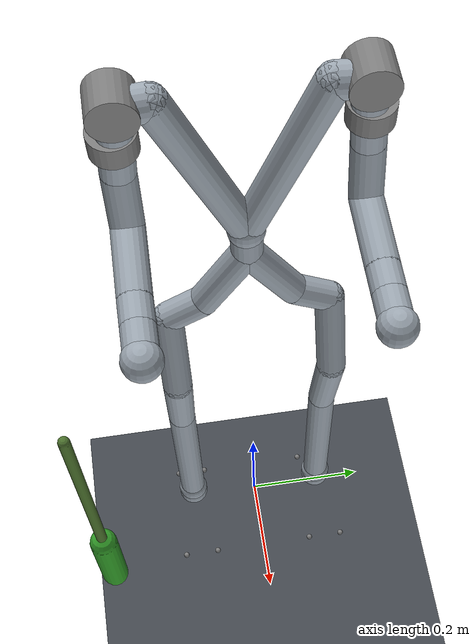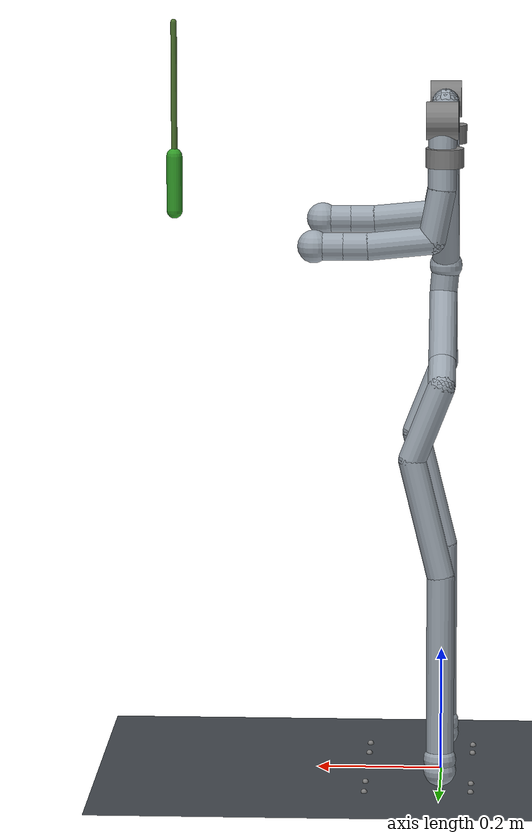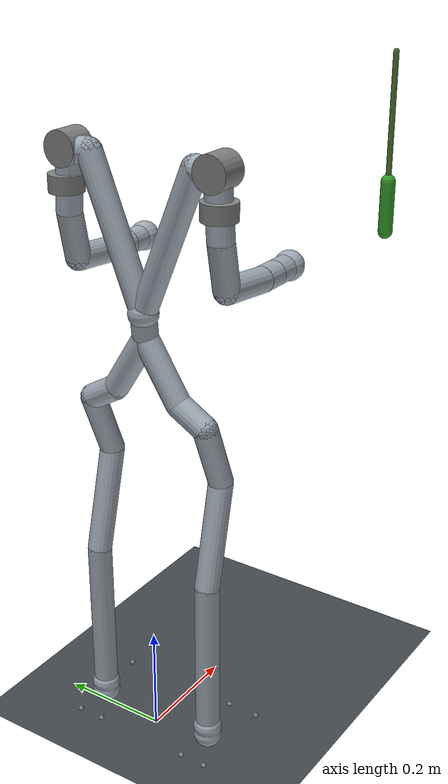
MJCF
<mujoco model="g1_okra_sim">
  <compiler angle="radian" meshdir="meshes/" />
  <worldbody>
    <body name="pelvis" pos="0 0 0.786864" gravcomp="1">
      <inertial pos="0 0 -0.0760301" quat="1 0 -0.000398273 0" mass="3.814" diaginertia="0.0105549 0.00931478 0.0079185" />
      <body name="left_hip_pitch_link" pos="0 0.064452 -0.1027" gravcomp="1">
        <inertial pos="0.002741 0.047791 -0.02606" quat="0.954862 0.293964 0.0302556 0.030122" mass="1.35" diaginertia="0.00181517 0.00153422 0.00116212" />
        <joint name="left_hip_pitch_joint" pos="0 0 0" axis="0 1 0" range="-2.5307 2.8798" actuatorfrcrange="-88 88" />
        <body name="left_hip_roll_link" pos="0 0.052 -0.030465" quat="0.996179 0 -0.0873386 0" gravcomp="1">
          <inertial pos="0.029812 -0.001045 -0.087934" quat="0.977808 -1.97119e-05 0.205576 -0.0403793" mass="1.52" diaginertia="0.00254986 0.00241169 0.00148755" />
          <joint name="left_hip_roll_joint" pos="0 0 0" axis="1 0 0" range="-0.5236 2.9671" actuatorfrcrange="-139 139" />
          <body name="left_hip_yaw_link" pos="0.025001 0 -0.12412" gravcomp="1">
            <inertial pos="-0.057709 -0.010981 -0.15078" quat="0.600598 0.15832 0.223482 0.751181" mass="1.702" diaginertia="0.00776166 0.00717575 0.00160139" />
            <joint name="left_hip_yaw_joint" pos="0 0 0" axis="0 0 1" range="-2.7576 2.7576" actuatorfrcrange="-88 88" />
            <body name="left_knee_link" pos="-0.078273 0.0021489 -0.17734" quat="0.996179 0 0.0873386 0" gravcomp="1">
              <inertial pos="0.005457 0.003964 -0.12074" quat="0.923418 -0.0327699 0.0158246 0.382067" mass="1.932" diaginertia="0.0113804 0.0112778 0.00146458" />
              <joint name="left_knee_joint" pos="0 0 0" axis="0 1 0" range="-0.087267 2.8798" actuatorfrcrange="-139 139" />
              <body name="left_ankle_pitch_link" pos="0 -9.4445e-05 -0.30001" gravcomp="1">
                <inertial pos="-0.007269 0 0.011137" quat="0.603053 0.369225 0.369225 0.603053" mass="0.074" diaginertia="1.89e-05 1.40805e-05 6.9195e-06" />
                <joint name="left_ankle_pitch_joint" pos="0 0 0" axis="0 1 0" range="-0.87267 0.5236" actuatorfrcrange="-35 35" />
                <body name="left_ankle_roll_link" pos="0 0 -0.017558" gravcomp="1">
                  <inertial pos="0.026505 0 -0.016425" quat="-0.000481092 0.728482 -0.000618967 0.685065" mass="0.608" diaginertia="0.00167218 0.0016161 0.000217621" />
                  <joint name="left_ankle_roll_joint" pos="0 0 0" axis="1 0 0" range="-0.2618 0.2618" actuatorfrcrange="-35 35" />
                  <geom size="0.005" pos="-0.05 0.025 -0.03" />
                  <geom size="0.005" pos="-0.05 -0.025 -0.03" />
                  <geom size="0.005" pos="0.12 0.03 -0.03" />
                  <geom size="0.005" pos="0.12 -0.03 -0.03" />
                  <geom name="tip_left_ankle_roll_link" type="sphere" size="0.026" rgba="0.62 0.66 0.70 1" contype="0" conaffinity="0" group="1" mass="0" />
                </body>
                <geom name="tip_left_ankle_pitch_link" type="sphere" size="0.026" rgba="0.62 0.66 0.70 1" contype="0" conaffinity="0" group="1" mass="0" />
              </body>
              <geom name="bone_left_knee_link_left_ankle_pitch_link" type="capsule" fromto="0 0 0 0.000000 -0.000094 -0.300010" size="0.022" rgba="0.62 0.66 0.70 1" contype="0" conaffinity="0" group="1" mass="0" />
            </body>
            <geom name="bone_left_hip_yaw_link_left_knee_link" type="capsule" fromto="0 0 0 -0.078273 0.002149 -0.177340" size="0.022" rgba="0.62 0.66 0.70 1" contype="0" conaffinity="0" group="1" mass="0" />
          </body>
          <geom name="bone_left_hip_roll_link_left_hip_yaw_link" type="capsule" fromto="0 0 0 0.025001 0.000000 -0.124120" size="0.022" rgba="0.62 0.66 0.70 1" contype="0" conaffinity="0" group="1" mass="0" />
        </body>
        <geom name="bone_left_hip_pitch_link_left_hip_roll_link" type="capsule" fromto="0 0 0 0.000000 0.052000 -0.030465" size="0.022" rgba="0.62 0.66 0.70 1" contype="0" conaffinity="0" group="1" mass="0" />
      </body>
      <body name="right_hip_pitch_link" pos="0 -0.064452 -0.1027" gravcomp="1">
        <inertial pos="0.002741 -0.047791 -0.02606" quat="0.954862 -0.293964 0.0302556 -0.030122" mass="1.35" diaginertia="0.00181517 0.00153422 0.00116212" />
        <joint name="right_hip_pitch_joint" pos="0 0 0" axis="0 1 0" range="-2.5307 2.8798" actuatorfrcrange="-88 88" />
        <body name="right_hip_roll_link" pos="0 -0.052 -0.030465" quat="0.996179 0 -0.0873386 0" gravcomp="1">
          <inertial pos="0.029812 0.001045 -0.087934" quat="0.977808 1.97119e-05 0.205576 0.0403793" mass="1.52" diaginertia="0.00254986 0.00241169 0.00148755" />
          <joint name="right_hip_roll_joint" pos="0 0 0" axis="1 0 0" range="-2.9671 0.5236" actuatorfrcrange="-139 139" />
          <body name="right_hip_yaw_link" pos="0.025001 0 -0.12412" gravcomp="1">
            <inertial pos="-0.057709 0.010981 -0.15078" quat="0.751181 0.223482 0.15832 0.600598" mass="1.702" diaginertia="0.00776166 0.00717575 0.00160139" />
            <joint name="right_hip_yaw_joint" pos="0 0 0" axis="0 0 1" range="-2.7576 2.7576" actuatorfrcrange="-88 88" />
            <body name="right_knee_link" pos="-0.078273 -0.0021489 -0.17734" quat="0.996179 0 0.0873386 0" gravcomp="1">
              <inertial pos="0.005457 -0.003964 -0.12074" quat="0.923439 0.0345276 0.0116333 -0.382012" mass="1.932" diaginertia="0.011374 0.0112843 0.00146452" />
              <joint name="right_knee_joint" pos="0 0 0" axis="0 1 0" range="-0.087267 2.8798" actuatorfrcrange="-139 139" />
              <body name="right_ankle_pitch_link" pos="0 9.4445e-05 -0.30001" gravcomp="1">
                <inertial pos="-0.007269 0 0.011137" quat="0.603053 0.369225 0.369225 0.603053" mass="0.074" diaginertia="1.89e-05 1.40805e-05 6.9195e-06" />
                <joint name="right_ankle_pitch_joint" pos="0 0 0" axis="0 1 0" range="-0.87267 0.5236" actuatorfrcrange="-35 35" />
                <body name="right_ankle_roll_link" pos="0 0 -0.017558" gravcomp="1">
                  <inertial pos="0.026505 0 -0.016425" quat="0.000481092 0.728482 0.000618967 0.685065" mass="0.608" diaginertia="0.00167218 0.0016161 0.000217621" />
                  <joint name="right_ankle_roll_joint" pos="0 0 0" axis="1 0 0" range="-0.2618 0.2618" actuatorfrcrange="-35 35" />
                  <geom size="0.005" pos="-0.05 0.025 -0.03" />
                  <geom size="0.005" pos="-0.05 -0.025 -0.03" />
                  <geom size="0.005" pos="0.12 0.03 -0.03" />
                  <geom size="0.005" pos="0.12 -0.03 -0.03" />
                  <geom name="tip_right_ankle_roll_link" type="sphere" size="0.026" rgba="0.62 0.66 0.70 1" contype="0" conaffinity="0" group="1" mass="0" />
                </body>
                <geom name="tip_right_ankle_pitch_link" type="sphere" size="0.026" rgba="0.62 0.66 0.70 1" contype="0" conaffinity="0" group="1" mass="0" />
              </body>
              <geom name="bone_right_knee_link_right_ankle_pitch_link" type="capsule" fromto="0 0 0 0.000000 0.000094 -0.300010" size="0.022" rgba="0.62 0.66 0.70 1" contype="0" conaffinity="0" group="1" mass="0" />
            </body>
            <geom name="bone_right_hip_yaw_link_right_knee_link" type="capsule" fromto="0 0 0 -0.078273 -0.002149 -0.177340" size="0.022" rgba="0.62 0.66 0.70 1" contype="0" conaffinity="0" group="1" mass="0" />
          </body>
          <geom name="bone_right_hip_roll_link_right_hip_yaw_link" type="capsule" fromto="0 0 0 0.025001 0.000000 -0.124120" size="0.022" rgba="0.62 0.66 0.70 1" contype="0" conaffinity="0" group="1" mass="0" />
        </body>
        <geom name="bone_right_hip_pitch_link_right_hip_roll_link" type="capsule" fromto="0 0 0 0.000000 -0.052000 -0.030465" size="0.022" rgba="0.62 0.66 0.70 1" contype="0" conaffinity="0" group="1" mass="0" />
      </body>
      <body name="waist_yaw_link" gravcomp="1">
        <inertial pos="0.003494 0.000233 0.018034" quat="0.289697 0.591001 -0.337795 0.672821" mass="0.214" diaginertia="0.000163531 0.000107714 0.000102205" />
        <joint name="waist_yaw_joint" pos="0 0 0" axis="0 0 1" range="-2.618 2.618" actuatorfrcrange="-88 88" />
        <body name="waist_roll_link" pos="-0.0039635 0 0.044" gravcomp="1">
          <inertial pos="0 2.3e-05 0" quat="0.5 0.5 -0.5 0.5" mass="0.086" diaginertia="8.245e-06 7.079e-06 6.339e-06" />
          <joint name="waist_roll_joint" pos="0 0 0" axis="1 0 0" range="-0.52 0.52" actuatorfrcrange="-35 35" />
          <body name="torso_link" gravcomp="1">
            <inertial pos="0.0013154 0.000855537 0.184599" quat="0.999895 -0.00548212 0.0132901 0.00194196" mass="7.817" diaginertia="0.121734 0.109736 0.0274043" />
            <joint name="waist_pitch_joint" pos="0 0 0" axis="0 1 0" range="-0.52 0.52" actuatorfrcrange="-35 35" />
            <body name="left_shoulder_pitch_link" pos="0.0039563 0.10022 0.24778" quat="0.990264 0.139201 1.38722e-05 -9.86868e-05" gravcomp="1">
              <inertial pos="0 0.035892 -0.011628" quat="0.654152 0.0130458 -0.326267 0.68225" mass="0.718" diaginertia="0.000465864 0.000432842 0.000406394" />
              <joint name="left_shoulder_pitch_joint" pos="0 0 0" axis="0 1 0" range="-3.0892 2.6704" actuatorfrcrange="-25 25" />
              <geom size="0.03 0.025" pos="0 0.04 -0.01" quat="0.707107 0 0.707107 0" type="cylinder" />
              <body name="left_shoulder_roll_link" pos="0 0.038 -0.013831" quat="0.990268 -0.139172 0 0" gravcomp="1">
                <inertial pos="-0.000227 0.00727 -0.063243" quat="0.701256 -0.0196223 -0.00710317 0.712604" mass="0.643" diaginertia="0.000691311 0.000618011 0.000388977" />
                <joint name="left_shoulder_roll_joint" pos="0 0 0" axis="1 0 0" range="-1.5882 2.2515" actuatorfrcrange="-25 25" />
                <geom size="0.03 0.015" pos="-0.004 0.006 -0.053" type="cylinder" />
                <body name="left_shoulder_yaw_link" pos="0 0.00624 -0.1032" gravcomp="1">
                  <inertial pos="0.010773 -0.002949 -0.072009" quat="0.716879 -0.0964829 -0.0679942 0.687134" mass="0.734" diaginertia="0.00106187 0.00103217 0.000400661" />
                  <joint name="left_shoulder_yaw_joint" pos="0 0 0" axis="0 0 1" range="-2.618 2.618" actuatorfrcrange="-25 25" />
                  <body name="left_elbow_link" pos="0.015783 0 -0.080518" gravcomp="1">
                    <inertial pos="0.064956 0.004454 -0.010062" quat="0.541765 0.636132 0.388821 0.388129" mass="0.6" diaginertia="0.000443035 0.000421612 0.000259353" />
                    <joint name="left_elbow_joint" pos="0 0 0" axis="0 1 0" range="-1.0472 2.0944" actuatorfrcrange="-25 25" />
                    <body name="left_wrist_roll_link" pos="0.1 0.00188791 -0.01" gravcomp="1">
                      <inertial pos="0.0171394 0.000537591 4.8864e-07" quat="0.575338 0.411667 -0.574906 0.411094" mass="0.085445" diaginertia="5.48211e-05 4.96646e-05 3.57798e-05" />
                      <joint name="left_wrist_roll_joint" pos="0 0 0" axis="1 0 0" range="-1.97222 1.97222" actuatorfrcrange="-25 25" />
                      <body name="left_wrist_pitch_link" pos="0.038 0 0" gravcomp="1">
                        <inertial pos="0.0229999 -0.00111685 -0.00111658" quat="0.249998 0.661363 0.293036 0.643608" mass="0.48405" diaginertia="0.000430353 0.000429873 0.000164648" />
                        <joint name="left_wrist_pitch_joint" pos="0 0 0" axis="0 1 0" range="-1.61443 1.61443" actuatorfrcrange="-5 5" />
                        <body name="left_wrist_yaw_link" pos="0.046 0 0" gravcomp="1">
                          <inertial pos="0.0483152 0.0252893 0.00485343" quat="0.548076 0.327521 0.601738 0.479847" mass="0.254576" diaginertia="0.000444227 0.000421867 0.000219316" />
                          <joint name="left_wrist_yaw_joint" pos="0 0 0" axis="0 0 1" range="-1.61443 1.61443" actuatorfrcrange="-5 5" />
                          <geom name="tip_left_wrist_yaw_link" type="sphere" size="0.026" rgba="0.62 0.66 0.70 1" contype="0" conaffinity="0" group="1" mass="0" />
                        </body>
                        <geom name="bone_left_wrist_pitch_link_left_wrist_yaw_link" type="capsule" fromto="0 0 0 0.046000 0.000000 0.000000" size="0.022" rgba="0.62 0.66 0.70 1" contype="0" conaffinity="0" group="1" mass="0" />
                      </body>
                      <geom name="bone_left_wrist_roll_link_left_wrist_pitch_link" type="capsule" fromto="0 0 0 0.038000 0.000000 0.000000" size="0.022" rgba="0.62 0.66 0.70 1" contype="0" conaffinity="0" group="1" mass="0" />
                    </body>
                    <geom name="bone_left_elbow_link_left_wrist_roll_link" type="capsule" fromto="0 0 0 0.100000 0.001888 -0.010000" size="0.022" rgba="0.62 0.66 0.70 1" contype="0" conaffinity="0" group="1" mass="0" />
                  </body>
                  <geom name="bone_left_shoulder_yaw_link_left_elbow_link" type="capsule" fromto="0 0 0 0.015783 0.000000 -0.080518" size="0.022" rgba="0.62 0.66 0.70 1" contype="0" conaffinity="0" group="1" mass="0" />
                </body>
                <geom name="bone_left_shoulder_roll_link_left_shoulder_yaw_link" type="capsule" fromto="0 0 0 0.000000 0.006240 -0.103200" size="0.022" rgba="0.62 0.66 0.70 1" contype="0" conaffinity="0" group="1" mass="0" />
              </body>
              <geom name="bone_left_shoulder_pitch_link_left_shoulder_roll_link" type="capsule" fromto="0 0 0 0.000000 0.038000 -0.013831" size="0.022" rgba="0.62 0.66 0.70 1" contype="0" conaffinity="0" group="1" mass="0" />
            </body>
            <body name="right_shoulder_pitch_link" pos="0.0039563 -0.10021 0.24778" quat="0.990264 -0.139201 1.38722e-05 9.86868e-05" gravcomp="1">
              <inertial pos="0 -0.035892 -0.011628" quat="0.68225 -0.326267 0.0130458 0.654152" mass="0.718" diaginertia="0.000465864 0.000432842 0.000406394" />
              <joint name="right_shoulder_pitch_joint" pos="0 0 0" axis="0 1 0" range="-3.0892 2.6704" actuatorfrcrange="-25 25" />
              <geom size="0.03 0.025" pos="0 -0.04 -0.01" quat="0.707107 0 0.707107 0" type="cylinder" />
              <body name="right_shoulder_roll_link" pos="0 -0.038 -0.013831" quat="0.990268 0.139172 0 0" gravcomp="1">
                <inertial pos="-0.000227 -0.00727 -0.063243" quat="0.712604 -0.00710317 -0.0196223 0.701256" mass="0.643" diaginertia="0.000691311 0.000618011 0.000388977" />
                <joint name="right_shoulder_roll_joint" pos="0 0 0" axis="1 0 0" range="-2.2515 1.5882" actuatorfrcrange="-25 25" />
                <geom size="0.03 0.015" pos="-0.004 -0.006 -0.053" type="cylinder" />
                <body name="right_shoulder_yaw_link" pos="0 -0.00624 -0.1032" gravcomp="1">
                  <inertial pos="0.010773 0.002949 -0.072009" quat="0.687134 -0.0679942 -0.0964829 0.716879" mass="0.734" diaginertia="0.00106187 0.00103217 0.000400661" />
                  <joint name="right_shoulder_yaw_joint" pos="0 0 0" axis="0 0 1" range="-2.618 2.618" actuatorfrcrange="-25 25" />
                  <body name="right_elbow_link" pos="0.015783 0 -0.080518" gravcomp="1">
                    <inertial pos="0.064956 -0.004454 -0.010062" quat="0.388129 0.388821 0.636132 0.541765" mass="0.6" diaginertia="0.000443035 0.000421612 0.000259353" />
                    <joint name="right_elbow_joint" pos="0 0 0" axis="0 1 0" range="-1.0472 2.0944" actuatorfrcrange="-25 25" />
                    <body name="right_wrist_roll_link" pos="0.1 -0.00188791 -0.01" gravcomp="1">
                      <inertial pos="0.0171394 -0.000537591 4.8864e-07" quat="0.411667 0.575338 -0.411094 0.574906" mass="0.085445" diaginertia="5.48211e-05 4.96646e-05 3.57798e-05" />
                      <joint name="right_wrist_roll_joint" pos="0 0 0" axis="1 0 0" range="-1.97222 1.97222" actuatorfrcrange="-25 25" />
                      <body name="right_wrist_pitch_link" pos="0.038 0 0" gravcomp="1">
                        <inertial pos="0.0229999 0.00111685 -0.00111658" quat="0.643608 0.293036 0.661363 0.249998" mass="0.48405" diaginertia="0.000430353 0.000429873 0.000164648" />
                        <joint name="right_wrist_pitch_joint" pos="0 0 0" axis="0 1 0" range="-1.61443 1.61443" actuatorfrcrange="-5 5" />
                        <body name="right_wrist_yaw_link" pos="0.046 0 0" gravcomp="1">
                          <inertial pos="0.0379083 0.0289125 -0.0016186" quat="0.349895 0.361293 0.626906 0.595004" mass="0.254576" diaginertia="0.000427647 0.000400224 0.000206049" />
                          <joint name="right_wrist_yaw_joint" pos="0 0 0" axis="0 0 1" range="-1.61443 1.61443" actuatorfrcrange="-5 5" />
                          <geom name="tip_right_wrist_yaw_link" type="sphere" size="0.026" rgba="0.62 0.66 0.70 1" contype="0" conaffinity="0" group="1" mass="0" />
                          <camera name="wrist_cam" pos="0.055000 -0.020000 0.045000" quat="0.596304675 0.380027282 -0.380027282 -0.596304675" fovy="92.0000" />
                        </body>
                        <geom name="bone_right_wrist_pitch_link_right_wrist_yaw_link" type="capsule" fromto="0 0 0 0.046000 0.000000 0.000000" size="0.022" rgba="0.62 0.66 0.70 1" contype="0" conaffinity="0" group="1" mass="0" />
                      </body>
                      <geom name="bone_right_wrist_roll_link_right_wrist_pitch_link" type="capsule" fromto="0 0 0 0.038000 0.000000 0.000000" size="0.022" rgba="0.62 0.66 0.70 1" contype="0" conaffinity="0" group="1" mass="0" />
                    </body>
                    <geom name="bone_right_elbow_link_right_wrist_roll_link" type="capsule" fromto="0 0 0 0.100000 -0.001888 -0.010000" size="0.022" rgba="0.62 0.66 0.70 1" contype="0" conaffinity="0" group="1" mass="0" />
                  </body>
                  <geom name="bone_right_shoulder_yaw_link_right_elbow_link" type="capsule" fromto="0 0 0 0.015783 0.000000 -0.080518" size="0.022" rgba="0.62 0.66 0.70 1" contype="0" conaffinity="0" group="1" mass="0" />
                </body>
                <geom name="bone_right_shoulder_roll_link_right_shoulder_yaw_link" type="capsule" fromto="0 0 0 0.000000 -0.006240 -0.103200" size="0.022" rgba="0.62 0.66 0.70 1" contype="0" conaffinity="0" group="1" mass="0" />
              </body>
              <geom name="bone_right_shoulder_pitch_link_right_shoulder_roll_link" type="capsule" fromto="0 0 0 0.000000 -0.038000 -0.013831" size="0.022" rgba="0.62 0.66 0.70 1" contype="0" conaffinity="0" group="1" mass="0" />
            </body>
            <geom name="bone_torso_link_left_shoulder_pitch_link" type="capsule" fromto="0 0 0 0.003956 0.100220 0.247780" size="0.022" rgba="0.62 0.66 0.70 1" contype="0" conaffinity="0" group="1" mass="0" />
            <geom name="bone_torso_link_right_shoulder_pitch_link" type="capsule" fromto="0 0 0 0.003956 -0.100210 0.247780" size="0.022" rgba="0.62 0.66 0.70 1" contype="0" conaffinity="0" group="1" mass="0" />
            <camera name="chest_cam" pos="0.109000 0.030000 0.248000" quat="0.558436200 0.433761467 -0.433761467 -0.558436200" fovy="70.0000" />
          </body>
          <geom name="tip_waist_roll_link" type="sphere" size="0.026" rgba="0.62 0.66 0.70 1" contype="0" conaffinity="0" group="1" mass="0" />
        </body>
        <geom name="bone_waist_yaw_link_waist_roll_link" type="capsule" fromto="0 0 0 -0.003964 0.000000 0.044000" size="0.022" rgba="0.62 0.66 0.70 1" contype="0" conaffinity="0" group="1" mass="0" />
      </body>
      <geom name="bone_pelvis_left_hip_pitch_link" type="capsule" fromto="0 0 0 0.000000 0.064452 -0.102700" size="0.022" rgba="0.62 0.66 0.70 1" contype="0" conaffinity="0" group="1" mass="0" />
      <geom name="bone_pelvis_right_hip_pitch_link" type="capsule" fromto="0 0 0 0.000000 -0.064452 -0.102700" size="0.022" rgba="0.62 0.66 0.70 1" contype="0" conaffinity="0" group="1" mass="0" />
    </body>
    <geom name="floor" type="plane" pos="0 0 0.000000" size="3 3 0.05" material="grid_mat" />
    <light pos="0.8 0.4 2.4" dir="-0.3 -0.15 -1" diffuse="0.8 0.8 0.8" />
    <light pos="-0.8 -0.8 2.0" dir="0.3 0.3 -1" diffuse="0.35 0.35 0.35" />
    <camera name="spectator" pos="1.2960 -0.9500 1.3509" xyaxes="0.66 0.75 0 -0.28 0.25 0.93" fovy="45" />
    <body name="okra" pos="0.446037 -0.200000 0.930864" mocap="true">
      <geom name="okra_pod" type="capsule" size="0.0130 0.0450" rgba="0.20 0.62 0.16 1" contype="0" conaffinity="0" />
      <geom name="okra_stem" type="capsule" fromto="0 0 0.0450 0 0 0.2650" size="0.005" rgba="0.30 0.45 0.18 1" contype="0" conaffinity="0" />
    </body>
  </worldbody>
  <actuator>
    <position name="act_left_hip_pitch_joint" joint="left_hip_pitch_joint" kp="400" kv="20" />
    <position name="act_left_hip_roll_joint" joint="left_hip_roll_joint" kp="400" kv="20" />
    <position name="act_left_hip_yaw_joint" joint="left_hip_yaw_joint" kp="400" kv="20" />
    <position name="act_left_knee_joint" joint="left_knee_joint" kp="400" kv="20" />
    <position name="act_left_ankle_pitch_joint" joint="left_ankle_pitch_joint" kp="400" kv="20" />
    <position name="act_left_ankle_roll_joint" joint="left_ankle_roll_joint" kp="400" kv="20" />
    <position name="act_right_hip_pitch_joint" joint="right_hip_pitch_joint" kp="400" kv="20" />
    <position name="act_right_hip_roll_joint" joint="right_hip_roll_joint" kp="400" kv="20" />
    <position name="act_right_hip_yaw_joint" joint="right_hip_yaw_joint" kp="400" kv="20" />
    <position name="act_right_knee_joint" joint="right_knee_joint" kp="400" kv="20" />
    <position name="act_right_ankle_pitch_joint" joint="right_ankle_pitch_joint" kp="400" kv="20" />
    <position name="act_right_ankle_roll_joint" joint="right_ankle_roll_joint" kp="400" kv="20" />
    <position name="act_waist_yaw_joint" joint="waist_yaw_joint" kp="400" kv="20" />
    <position name="act_waist_roll_joint" joint="waist_roll_joint" kp="400" kv="20" />
    <position name="act_waist_pitch_joint" joint="waist_pitch_joint" kp="400" kv="20" />
    <position name="act_left_shoulder_pitch_joint" joint="left_shoulder_pitch_joint" kp="80" kv="3" />
    <position name="act_left_shoulder_roll_joint" joint="left_shoulder_roll_joint" kp="80" kv="3" />
    <position name="act_left_shoulder_yaw_joint" joint="left_shoulder_yaw_joint" kp="80" kv="3" />
    <position name="act_left_elbow_joint" joint="left_elbow_joint" kp="80" kv="3" />
    <position name="act_left_wrist_roll_joint" joint="left_wrist_roll_joint" kp="80" kv="3" />
    <position name="act_left_wrist_pitch_joint" joint="left_wrist_pitch_joint" kp="80" kv="3" />
    <position name="act_left_wrist_yaw_joint" joint="left_wrist_yaw_joint" kp="80" kv="3" />
    <position name="act_right_shoulder_pitch_joint" joint="right_shoulder_pitch_joint" kp="80" kv="3" />
    <position name="act_right_shoulder_roll_joint" joint="right_shoulder_roll_joint" kp="80" kv="3" />
    <position name="act_right_shoulder_yaw_joint" joint="right_shoulder_yaw_joint" kp="80" kv="3" />
    <position name="act_right_elbow_joint" joint="right_elbow_joint" kp="80" kv="3" />
    <position name="act_right_wrist_roll_joint" joint="right_wrist_roll_joint" kp="80" kv="3" />
    <position name="act_right_wrist_pitch_joint" joint="right_wrist_pitch_joint" kp="80" kv="3" />
    <position name="act_right_wrist_yaw_joint" joint="right_wrist_yaw_joint" kp="80" kv="3" />
  </actuator>
  <option timestep="0.002" gravity="0 0 -9.81" integrator="implicitfast" />
  <visual>
    <map znear="0.01" zfar="50" />
  </visual>
  <keyframe>
    <key name="home" qpos="0.000000 0.000000 0.000000 0.000000 0.000000 0.000000 0.000000 0.000000 0.000000 0.000000 0.000000 0.000000 0.000000 0.000000 0.000000 0.200000 0.250000 0.000000 0.400000 0.000000 0.000000 0.000000 0.200000 -0.250000 0.000000 0.400000 0.000000 0.000000 0.000000" ctrl="0.000000 0.000000 0.000000 0.000000 0.000000 0.000000 0.000000 0.000000 0.000000 0.000000 0.000000 0.000000 0.000000 0.000000 0.000000 0.200000 0.250000 0.000000 0.400000 0.000000 0.000000 0.000000 0.200000 -0.250000 0.000000 0.400000 0.000000 0.000000 0.000000" />
  </keyframe>
  <asset>
    <texture name="sky" type="skybox" builtin="gradient" rgb1="0.55 0.66 0.78" rgb2="0.10 0.12 0.16" width="256" height="256" />
    <texture name="grid" type="2d" builtin="checker" rgb1="0.22 0.24 0.26" rgb2="0.30 0.32 0.35" width="300" height="300" />
    <material name="grid_mat" texture="grid" texrepeat="8 8" reflectance="0.05" />
  </asset>
</mujoco>
